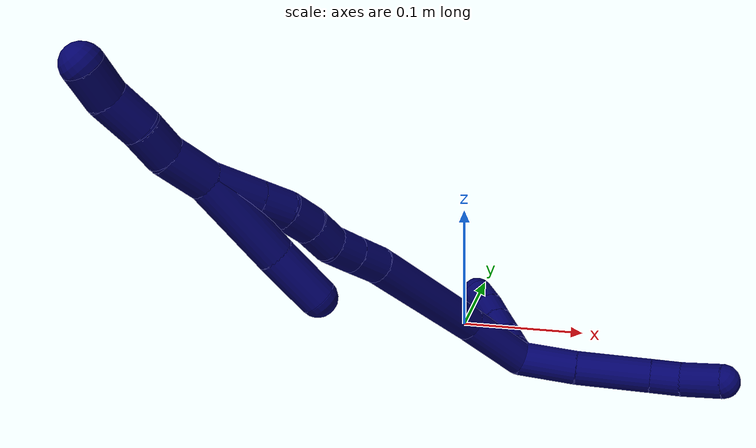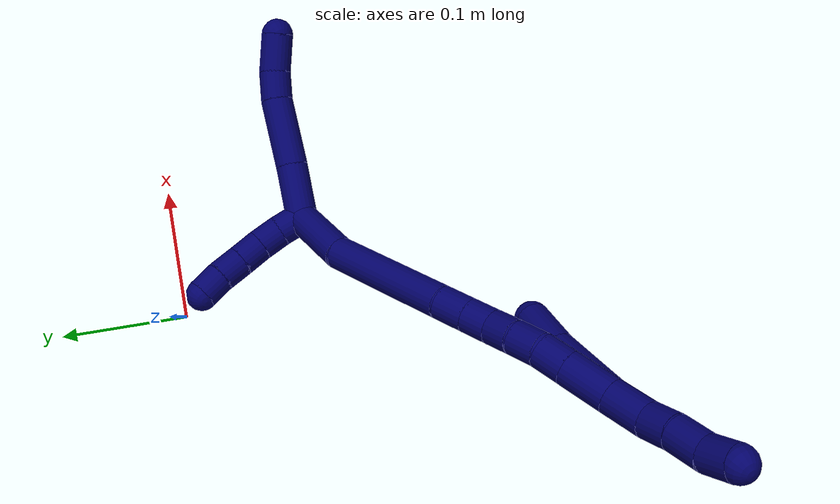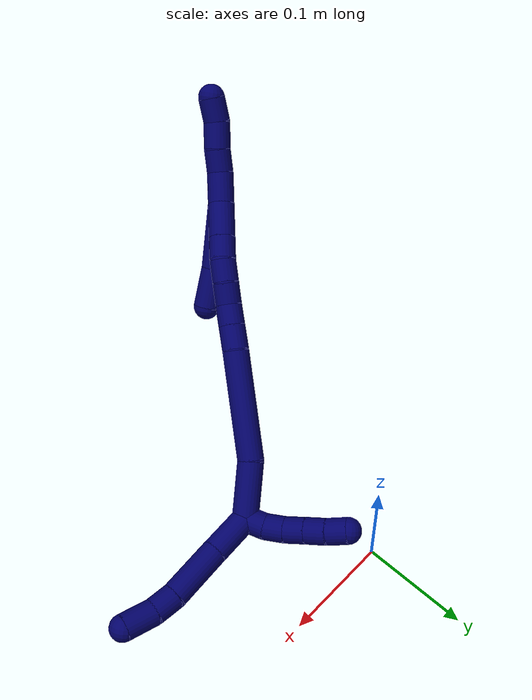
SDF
<sdf version="1.7">
 <world name="default">
  <model name="7">
   <static>0</static>
   <link name="7">
    <collision name="collision-cylinder-e_1_2_8">
     <pose>0.016295 -0.000649 -0.013409 3.09324 0.881687 3.03918</pose>
     <geometry><cylinder><radius>0.0125</radius><length>0.042226</length></cylinder></geometry>
     <surface>
      <friction><ode><mu>1.16</mu><mu2>1.16</mu2><slip1>0</slip1><slip2>0</slip2></ode></friction>
      <contact><ode><kp>1e+06</kp><kd>1</kd><max_vel>0</max_vel><min_depth>0.001</min_depth></ode></contact>
     </surface>
    </collision>
    <visual name="visual-cylinder-e_1_2_8">
     <pose>0.016295 -0.000649 -0.013409 3.09324 0.881687 3.03918</pose>
     <geometry><cylinder><radius>0.0125</radius><length>0.042226</length></cylinder></geometry>
     <material><ambient>0.003922 0 0.403922 1</ambient></material>
    </visual>
    <collision name="collision-cylinder-e_2_8_9">
     <pose>0.054309 -0.000818 -0.043427 -3.11272 0.917733 -3.08316</pose>
     <geometry><cylinder><radius>0.0125</radius><length>0.054689</length></cylinder></geometry>
     <surface>
      <friction><ode><mu>1.16</mu><mu2>1.16</mu2><slip1>0</slip1><slip2>0</slip2></ode></friction>
      <contact><ode><kp>1e+06</kp><kd>1</kd><max_vel>0</max_vel><min_depth>0.001</min_depth></ode></contact>
     </surface>
    </collision>
    <visual name="visual-cylinder-e_2_8_9">
     <pose>0.054309 -0.000818 -0.043427 -3.11272 0.917733 -3.08316</pose>
     <geometry><cylinder><radius>0.0125</radius><length>0.054689</length></cylinder></geometry>
     <material><ambient>0.003922 0 0.403922 1</ambient></material>
    </visual>
    <collision name="collision-cylinder-e_3_9_10">
     <pose>0.085811 -0.001507 -0.065843 2.94309 1.0264 2.79182</pose>
     <geometry><cylinder><radius>0.0125</radius><length>0.022877</length></cylinder></geometry>
     <surface>
      <friction><ode><mu>1.16</mu><mu2>1.16</mu2><slip1>0</slip1><slip2>0</slip2></ode></friction>
      <contact><ode><kp>1e+06</kp><kd>1</kd><max_vel>0</max_vel><min_depth>0.001</min_depth></ode></contact>
     </surface>
    </collision>
    <visual name="visual-cylinder-e_3_9_10">
     <pose>0.085811 -0.001507 -0.065843 2.94309 1.0264 2.79182</pose>
     <geometry><cylinder><radius>0.0125</radius><length>0.022877</length></cylinder></geometry>
     <material><ambient>0.003922 0 0.403922 1</ambient></material>
    </visual>
    <collision name="collision-cylinder-e_4_10_6">
     <pose>0.109479 -0.005491 -0.076891 2.64848 1.16594 2.41239</pose>
     <geometry><cylinder><radius>0.0125</radius><length>0.030207</length></cylinder></geometry>
     <surface>
      <friction><ode><mu>1.16</mu><mu2>1.16</mu2><slip1>0</slip1><slip2>0</slip2></ode></friction>
      <contact><ode><kp>1e+06</kp><kd>1</kd><max_vel>0</max_vel><min_depth>0.001</min_depth></ode></contact>
     </surface>
    </collision>
    <visual name="visual-cylinder-e_4_10_6">
     <pose>0.109479 -0.005491 -0.076891 2.64848 1.16594 2.41239</pose>
     <geometry><cylinder><radius>0.0125</radius><length>0.030207</length></cylinder></geometry>
     <material><ambient>0.003922 0 0.403922 1</ambient></material>
    </visual>
    <collision name="collision-cylinder-e_1_2_11">
     <pose>-0.005141 0.008418 -0.001646 -1.76387 -0.539944 0.648422</pose>
     <geometry><cylinder><radius>0.0125</radius><length>0.02</length></cylinder></geometry>
     <surface>
      <friction><ode><mu>1.16</mu><mu2>1.16</mu2><slip1>0</slip1><slip2>0</slip2></ode></friction>
      <contact><ode><kp>1e+06</kp><kd>1</kd><max_vel>0</max_vel><min_depth>0.001</min_depth></ode></contact>
     </surface>
    </collision>
    <visual name="visual-cylinder-e_1_2_11">
     <pose>-0.005141 0.008418 -0.001646 -1.76387 -0.539944 0.648422</pose>
     <geometry><cylinder><radius>0.0125</radius><length>0.02</length></cylinder></geometry>
     <material><ambient>0.003922 0 0.403922 1</ambient></material>
    </visual>
    <collision name="collision-cylinder-e_2_11_12">
     <pose>-0.01477 0.025716 -0.002289 -1.45834 -0.465495 0.417394</pose>
     <geometry><cylinder><radius>0.0125</radius><length>0.02</length></cylinder></geometry>
     <surface>
      <friction><ode><mu>1.16</mu><mu2>1.16</mu2><slip1>0</slip1><slip2>0</slip2></ode></friction>
      <contact><ode><kp>1e+06</kp><kd>1</kd><max_vel>0</max_vel><min_depth>0.001</min_depth></ode></contact>
     </surface>
    </collision>
    <visual name="visual-cylinder-e_2_11_12">
     <pose>-0.01477 0.025716 -0.002289 -1.45834 -0.465495 0.417394</pose>
     <geometry><cylinder><radius>0.0125</radius><length>0.02</length></cylinder></geometry>
     <material><ambient>0.003922 0 0.403922 1</ambient></material>
    </visual>
    <collision name="collision-cylinder-e_3_12_13">
     <pose>-0.02355 0.043348 0.000944 -1.32132 -0.443469 0.346889</pose>
     <geometry><cylinder><radius>0.0125</radius><length>0.02</length></cylinder></geometry>
     <surface>
      <friction><ode><mu>1.16</mu><mu2>1.16</mu2><slip1>0</slip1><slip2>0</slip2></ode></friction>
      <contact><ode><kp>1e+06</kp><kd>1</kd><max_vel>0</max_vel><min_depth>0.001</min_depth></ode></contact>
     </surface>
    </collision>
    <visual name="visual-cylinder-e_3_12_13">
     <pose>-0.02355 0.043348 0.000944 -1.32132 -0.443469 0.346889</pose>
     <geometry><cylinder><radius>0.0125</radius><length>0.02</length></cylinder></geometry>
     <material><ambient>0.003922 0 0.403922 1</ambient></material>
    </visual>
    <collision name="collision-cylinder-e_4_13_14">
     <pose>-0.032009 0.060929 0.00534 -1.33025 -0.42994 0.339226</pose>
     <geometry><cylinder><radius>0.0125</radius><length>0.02</length></cylinder></geometry>
     <surface>
      <friction><ode><mu>1.16</mu><mu2>1.16</mu2><slip1>0</slip1><slip2>0</slip2></ode></friction>
      <contact><ode><kp>1e+06</kp><kd>1</kd><max_vel>0</max_vel><min_depth>0.001</min_depth></ode></contact>
     </surface>
    </collision>
    <visual name="visual-cylinder-e_4_13_14">
     <pose>-0.032009 0.060929 0.00534 -1.33025 -0.42994 0.339226</pose>
     <geometry><cylinder><radius>0.0125</radius><length>0.02</length></cylinder></geometry>
     <material><ambient>0.003922 0 0.403922 1</ambient></material>
    </visual>
    <collision name="collision-cylinder-e_5_14_5">
     <pose>-0.041002 0.078045 0.010341 -1.24115 -0.503485 0.363619</pose>
     <geometry><cylinder><radius>0.0125</radius><length>0.02</length></cylinder></geometry>
     <surface>
      <friction><ode><mu>1.16</mu><mu2>1.16</mu2><slip1>0</slip1><slip2>0</slip2></ode></friction>
      <contact><ode><kp>1e+06</kp><kd>1</kd><max_vel>0</max_vel><min_depth>0.001</min_depth></ode></contact>
     </surface>
    </collision>
    <visual name="visual-cylinder-e_5_14_5">
     <pose>-0.041002 0.078045 0.010341 -1.24115 -0.503485 0.363619</pose>
     <geometry><cylinder><radius>0.0125</radius><length>0.02</length></cylinder></geometry>
     <material><ambient>0.003922 0 0.403922 1</ambient></material>
    </visual>
    <collision name="collision-cylinder-e_1_2_15">
     <pose>-0.003078 -0.004957 0.026728 0.183396 -0.11274 -0.010378</pose>
     <geometry><cylinder><radius>0.0125</radius><length>0.054714</length></cylinder></geometry>
     <surface>
      <friction><ode><mu>1.16</mu><mu2>1.16</mu2><slip1>0</slip1><slip2>0</slip2></ode></friction>
      <contact><ode><kp>1e+06</kp><kd>1</kd><max_vel>0</max_vel><min_depth>0.001</min_depth></ode></contact>
     </surface>
    </collision>
    <visual name="visual-cylinder-e_1_2_15">
     <pose>-0.003078 -0.004957 0.026728 0.183396 -0.11274 -0.010378</pose>
     <geometry><cylinder><radius>0.0125</radius><length>0.054714</length></cylinder></geometry>
     <material><ambient>0.003922 0 0.403922 1</ambient></material>
    </visual>
    <collision name="collision-cylinder-e_2_15_16">
     <pose>-0.004697 -0.028474 0.101692 0.367287 0.028201 0.005238</pose>
     <geometry><cylinder><radius>0.0125</radius><length>0.103409</length></cylinder></geometry>
     <surface>
      <friction><ode><mu>1.16</mu><mu2>1.16</mu2><slip1>0</slip1><slip2>0</slip2></ode></friction>
      <contact><ode><kp>1e+06</kp><kd>1</kd><max_vel>0</max_vel><min_depth>0.001</min_depth></ode></contact>
     </surface>
    </collision>
    <visual name="visual-cylinder-e_2_15_16">
     <pose>-0.004697 -0.028474 0.101692 0.367287 0.028201 0.005238</pose>
     <geometry><cylinder><radius>0.0125</radius><length>0.103409</length></cylinder></geometry>
     <material><ambient>0.003922 0 0.403922 1</ambient></material>
    </visual>
    <collision name="collision-cylinder-e_3_16_17">
     <pose>-0.003747 -0.052338 0.160362 0.470449 -0.043358 -0.010393</pose>
     <geometry><cylinder><radius>0.0125</radius><length>0.023432</length></cylinder></geometry>
     <surface>
      <friction><ode><mu>1.16</mu><mu2>1.16</mu2><slip1>0</slip1><slip2>0</slip2></ode></friction>
      <contact><ode><kp>1e+06</kp><kd>1</kd><max_vel>0</max_vel><min_depth>0.001</min_depth></ode></contact>
     </surface>
    </collision>
    <visual name="visual-cylinder-e_3_16_17">
     <pose>-0.003747 -0.052338 0.160362 0.470449 -0.043358 -0.010393</pose>
     <geometry><cylinder><radius>0.0125</radius><length>0.023432</length></cylinder></geometry>
     <material><ambient>0.003922 0 0.403922 1</ambient></material>
    </visual>
    <collision name="collision-cylinder-e_4_17_18">
     <pose>-0.004623 -0.062225 0.180012 0.461294 -0.035716 -0.008388</pose>
     <geometry><cylinder><radius>0.0125</radius><length>0.020598</length></cylinder></geometry>
     <surface>
      <friction><ode><mu>1.16</mu><mu2>1.16</mu2><slip1>0</slip1><slip2>0</slip2></ode></friction>
      <contact><ode><kp>1e+06</kp><kd>1</kd><max_vel>0</max_vel><min_depth>0.001</min_depth></ode></contact>
     </surface>
    </collision>
    <visual name="visual-cylinder-e_4_17_18">
     <pose>-0.004623 -0.062225 0.180012 0.461294 -0.035716 -0.008388</pose>
     <geometry><cylinder><radius>0.0125</radius><length>0.020598</length></cylinder></geometry>
     <material><ambient>0.003922 0 0.403922 1</ambient></material>
    </visual>
    <collision name="collision-cylinder-e_5_18_19">
     <pose>-0.003678 -0.069522 0.199463 0.25936 0.123294 0.016099</pose>
     <geometry><cylinder><radius>0.0125</radius><length>0.021341</length></cylinder></geometry>
     <surface>
      <friction><ode><mu>1.16</mu><mu2>1.16</mu2><slip1>0</slip1><slip2>0</slip2></ode></friction>
      <contact><ode><kp>1e+06</kp><kd>1</kd><max_vel>0</max_vel><min_depth>0.001</min_depth></ode></contact>
     </surface>
    </collision>
    <visual name="visual-cylinder-e_5_18_19">
     <pose>-0.003678 -0.069522 0.199463 0.25936 0.123294 0.016099</pose>
     <geometry><cylinder><radius>0.0125</radius><length>0.021341</length></cylinder></geometry>
     <material><ambient>0.003922 0 0.403922 1</ambient></material>
    </visual>
    <collision name="collision-cylinder-e_6_19_20">
     <pose>-0.002164 -0.076091 0.219611 0.370721 0.018994 0.003562</pose>
     <geometry><cylinder><radius>0.0125</radius><length>0.021274</length></cylinder></geometry>
     <surface>
      <friction><ode><mu>1.16</mu><mu2>1.16</mu2><slip1>0</slip1><slip2>0</slip2></ode></friction>
      <contact><ode><kp>1e+06</kp><kd>1</kd><max_vel>0</max_vel><min_depth>0.001</min_depth></ode></contact>
     </surface>
    </collision>
    <visual name="visual-cylinder-e_6_19_20">
     <pose>-0.002164 -0.076091 0.219611 0.370721 0.018994 0.003562</pose>
     <geometry><cylinder><radius>0.0125</radius><length>0.021274</length></cylinder></geometry>
     <material><ambient>0.003922 0 0.403922 1</ambient></material>
    </visual>
    <collision name="collision-cylinder-e_7_20_21">
     <pose>-0.003842 -0.084354 0.239095 0.431784 -0.176526 -0.03881</pose>
     <geometry><cylinder><radius>0.0125</radius><length>0.021409</length></cylinder></geometry>
     <surface>
      <friction><ode><mu>1.16</mu><mu2>1.16</mu2><slip1>0</slip1><slip2>0</slip2></ode></friction>
      <contact><ode><kp>1e+06</kp><kd>1</kd><max_vel>0</max_vel><min_depth>0.001</min_depth></ode></contact>
     </surface>
    </collision>
    <visual name="visual-cylinder-e_7_20_21">
     <pose>-0.003842 -0.084354 0.239095 0.431784 -0.176526 -0.03881</pose>
     <geometry><cylinder><radius>0.0125</radius><length>0.021409</length></cylinder></geometry>
     <material><ambient>0.003922 0 0.403922 1</ambient></material>
    </visual>
    <collision name="collision-cylinder-e_8_21_1">
     <pose>-0.008674 -0.095731 0.263791 0.431657 -0.175495 -0.03857</pose>
     <geometry><cylinder><radius>0.0125</radius><length>0.033824</length></cylinder></geometry>
     <surface>
      <friction><ode><mu>1.16</mu><mu2>1.16</mu2><slip1>0</slip1><slip2>0</slip2></ode></friction>
      <contact><ode><kp>1e+06</kp><kd>1</kd><max_vel>0</max_vel><min_depth>0.001</min_depth></ode></contact>
     </surface>
    </collision>
    <visual name="visual-cylinder-e_8_21_1">
     <pose>-0.008674 -0.095731 0.263791 0.431657 -0.175495 -0.03857</pose>
     <geometry><cylinder><radius>0.0125</radius><length>0.033824</length></cylinder></geometry>
     <material><ambient>0.003922 0 0.403922 1</ambient></material>
    </visual>
    <collision name="collision-cylinder-e_1_1_22">
     <pose>-0.012649 -0.102458 0.248179 -3.13378 -0.033228 2.67995</pose>
     <geometry><cylinder><radius>0.0125</radius><length>0.061508</length></cylinder></geometry>
     <surface>
      <friction><ode><mu>1.16</mu><mu2>1.16</mu2><slip1>0</slip1><slip2>0</slip2></ode></friction>
      <contact><ode><kp>1e+06</kp><kd>1</kd><max_vel>0</max_vel><min_depth>0.001</min_depth></ode></contact>
     </surface>
    </collision>
    <visual name="visual-cylinder-e_1_1_22">
     <pose>-0.012649 -0.102458 0.248179 -3.13378 -0.033228 2.67995</pose>
     <geometry><cylinder><radius>0.0125</radius><length>0.061508</length></cylinder></geometry>
     <material><ambient>0.003922 0 0.403922 1</ambient></material>
    </visual>
    <collision name="collision-cylinder-e_2_22_4">
     <pose>-0.012679 -0.103185 0.198247 3.09125 0.051556 1.59465</pose>
     <geometry><cylinder><radius>0.0125</radius><length>0.038492</length></cylinder></geometry>
     <surface>
      <friction><ode><mu>1.16</mu><mu2>1.16</mu2><slip1>0</slip1><slip2>0</slip2></ode></friction>
      <contact><ode><kp>1e+06</kp><kd>1</kd><max_vel>0</max_vel><min_depth>0.001</min_depth></ode></contact>
     </surface>
    </collision>
    <visual name="visual-cylinder-e_2_22_4">
     <pose>-0.012679 -0.103185 0.198247 3.09125 0.051556 1.59465</pose>
     <geometry><cylinder><radius>0.0125</radius><length>0.038492</length></cylinder></geometry>
     <material><ambient>0.003922 0 0.403922 1</ambient></material>
    </visual>
    <collision name="collision-cylinder-e_1_1_23">
     <pose>-0.012129 -0.106847 0.293306 0.280727 -0.033522 -0.004737</pose>
     <geometry><cylinder><radius>0.0125</radius><length>0.029971</length></cylinder></geometry>
     <surface>
      <friction><ode><mu>1.16</mu><mu2>1.16</mu2><slip1>0</slip1><slip2>0</slip2></ode></friction>
      <contact><ode><kp>1e+06</kp><kd>1</kd><max_vel>0</max_vel><min_depth>0.001</min_depth></ode></contact>
     </surface>
    </collision>
    <visual name="visual-cylinder-e_1_1_23">
     <pose>-0.012129 -0.106847 0.293306 0.280727 -0.033522 -0.004737</pose>
     <geometry><cylinder><radius>0.0125</radius><length>0.029971</length></cylinder></geometry>
     <material><ambient>0.003922 0 0.403922 1</ambient></material>
    </visual>
    <collision name="collision-cylinder-e_2_23_24">
     <pose>-0.010545 -0.112879 0.318294 0.175777 0.191492 0.016925</pose>
     <geometry><cylinder><radius>0.0125</radius><length>0.021928</length></cylinder></geometry>
     <surface>
      <friction><ode><mu>1.16</mu><mu2>1.16</mu2><slip1>0</slip1><slip2>0</slip2></ode></friction>
      <contact><ode><kp>1e+06</kp><kd>1</kd><max_vel>0</max_vel><min_depth>0.001</min_depth></ode></contact>
     </surface>
    </collision>
    <visual name="visual-cylinder-e_2_23_24">
     <pose>-0.010545 -0.112879 0.318294 0.175777 0.191492 0.016925</pose>
     <geometry><cylinder><radius>0.0125</radius><length>0.021928</length></cylinder></geometry>
     <material><ambient>0.003922 0 0.403922 1</ambient></material>
    </visual>
    <collision name="collision-cylinder-e_3_24_25">
     <pose>-0.007865 -0.116864 0.341316 0.167711 0.047025 0.003953</pose>
     <geometry><cylinder><radius>0.0125</radius><length>0.025229</length></cylinder></geometry>
     <surface>
      <friction><ode><mu>1.16</mu><mu2>1.16</mu2><slip1>0</slip1><slip2>0</slip2></ode></friction>
      <contact><ode><kp>1e+06</kp><kd>1</kd><max_vel>0</max_vel><min_depth>0.001</min_depth></ode></contact>
     </surface>
    </collision>
    <visual name="visual-cylinder-e_3_24_25">
     <pose>-0.007865 -0.116864 0.341316 0.167711 0.047025 0.003953</pose>
     <geometry><cylinder><radius>0.0125</radius><length>0.025229</length></cylinder></geometry>
     <material><ambient>0.003922 0 0.403922 1</ambient></material>
    </visual>
    <collision name="collision-cylinder-e_4_25_3">
     <pose>-0.003695 -0.12083 0.364441 0.172324 0.318145 0.027712</pose>
     <geometry><cylinder><radius>0.0125</radius><length>0.022872</length></cylinder></geometry>
     <surface>
      <friction><ode><mu>1.16</mu><mu2>1.16</mu2><slip1>0</slip1><slip2>0</slip2></ode></friction>
      <contact><ode><kp>1e+06</kp><kd>1</kd><max_vel>0</max_vel><min_depth>0.001</min_depth></ode></contact>
     </surface>
    </collision>
    <visual name="visual-cylinder-e_4_25_3">
     <pose>-0.003695 -0.12083 0.364441 0.172324 0.318145 0.027712</pose>
     <geometry><cylinder><radius>0.0125</radius><length>0.022872</length></cylinder></geometry>
     <material><ambient>0.003922 0 0.403922 1</ambient></material>
    </visual>
    <collision name="collision-sphere-3">
     <pose>-0.000118 -0.122693 0.375142 0 -0 0</pose>
     <geometry><sphere><radius>0.0125</radius></sphere></geometry>
     <surface>
      <friction><ode><mu>1.16</mu><mu2>1.16</mu2><slip1>0</slip1><slip2>0</slip2></ode></friction>
      <contact><ode><kp>1e+06</kp><kd>1</kd><max_vel>0</max_vel><min_depth>0.001</min_depth></ode></contact>
     </surface>
    </collision>
    <visual name="visual-sphere-3">
     <pose>-0.000118 -0.122693 0.375142 0 -0 0</pose>
     <geometry><sphere><radius>0.0125</radius></sphere></geometry>
     <material><ambient>0.003922 0 0.403922 1</ambient></material>
    </visual>
    <collision name="collision-sphere-25">
     <pose>-0.007272 -0.118968 0.353739 0 -0 0</pose>
     <geometry><sphere><radius>0.0125</radius></sphere></geometry>
     <surface>
      <friction><ode><mu>1.16</mu><mu2>1.16</mu2><slip1>0</slip1><slip2>0</slip2></ode></friction>
      <contact><ode><kp>1e+06</kp><kd>1</kd><max_vel>0</max_vel><min_depth>0.001</min_depth></ode></contact>
     </surface>
    </collision>
    <visual name="visual-sphere-25">
     <pose>-0.007272 -0.118968 0.353739 0 -0 0</pose>
     <geometry><sphere><radius>0.0125</radius></sphere></geometry>
     <material><ambient>0.003922 0 0.403922 1</ambient></material>
    </visual>
    <collision name="collision-sphere-24">
     <pose>-0.008458 -0.114761 0.328892 0 -0 0</pose>
     <geometry><sphere><radius>0.0125</radius></sphere></geometry>
     <surface>
      <friction><ode><mu>1.16</mu><mu2>1.16</mu2><slip1>0</slip1><slip2>0</slip2></ode></friction>
      <contact><ode><kp>1e+06</kp><kd>1</kd><max_vel>0</max_vel><min_depth>0.001</min_depth></ode></contact>
     </surface>
    </collision>
    <visual name="visual-sphere-24">
     <pose>-0.008458 -0.114761 0.328892 0 -0 0</pose>
     <geometry><sphere><radius>0.0125</radius></sphere></geometry>
     <material><ambient>0.003922 0 0.403922 1</ambient></material>
    </visual>
    <collision name="collision-sphere-23">
     <pose>-0.012632 -0.110997 0.307696 0 -0 0</pose>
     <geometry><sphere><radius>0.0125</radius></sphere></geometry>
     <surface>
      <friction><ode><mu>1.16</mu><mu2>1.16</mu2><slip1>0</slip1><slip2>0</slip2></ode></friction>
      <contact><ode><kp>1e+06</kp><kd>1</kd><max_vel>0</max_vel><min_depth>0.001</min_depth></ode></contact>
     </surface>
    </collision>
    <visual name="visual-sphere-23">
     <pose>-0.012632 -0.110997 0.307696 0 -0 0</pose>
     <geometry><sphere><radius>0.0125</radius></sphere></geometry>
     <material><ambient>0.003922 0 0.403922 1</ambient></material>
    </visual>
    <collision name="collision-sphere-4">
     <pose>-0.011687 -0.104152 0.179051 0 -0 0</pose>
     <geometry><sphere><radius>0.0125</radius></sphere></geometry>
     <surface>
      <friction><ode><mu>1.16</mu><mu2>1.16</mu2><slip1>0</slip1><slip2>0</slip2></ode></friction>
      <contact><ode><kp>1e+06</kp><kd>1</kd><max_vel>0</max_vel><min_depth>0.001</min_depth></ode></contact>
     </surface>
    </collision>
    <visual name="visual-sphere-4">
     <pose>-0.011687 -0.104152 0.179051 0 -0 0</pose>
     <geometry><sphere><radius>0.0125</radius></sphere></geometry>
     <material><ambient>0.003922 0 0.403922 1</ambient></material>
    </visual>
    <collision name="collision-sphere-22">
     <pose>-0.013671 -0.102218 0.217444 0 -0 0</pose>
     <geometry><sphere><radius>0.0125</radius></sphere></geometry>
     <surface>
      <friction><ode><mu>1.16</mu><mu2>1.16</mu2><slip1>0</slip1><slip2>0</slip2></ode></friction>
      <contact><ode><kp>1e+06</kp><kd>1</kd><max_vel>0</max_vel><min_depth>0.001</min_depth></ode></contact>
     </surface>
    </collision>
    <visual name="visual-sphere-22">
     <pose>-0.013671 -0.102218 0.217444 0 -0 0</pose>
     <geometry><sphere><radius>0.0125</radius></sphere></geometry>
     <material><ambient>0.003922 0 0.403922 1</ambient></material>
    </visual>
    <collision name="collision-sphere-1">
     <pose>-0.011627 -0.102698 0.278915 0 -0 0</pose>
     <geometry><sphere><radius>0.0125</radius></sphere></geometry>
     <surface>
      <friction><ode><mu>1.16</mu><mu2>1.16</mu2><slip1>0</slip1><slip2>0</slip2></ode></friction>
      <contact><ode><kp>1e+06</kp><kd>1</kd><max_vel>0</max_vel><min_depth>0.001</min_depth></ode></contact>
     </surface>
    </collision>
    <visual name="visual-sphere-1">
     <pose>-0.011627 -0.102698 0.278915 0 -0 0</pose>
     <geometry><sphere><radius>0.0125</radius></sphere></geometry>
     <material><ambient>0.003922 0 0.403922 1</ambient></material>
    </visual>
    <collision name="collision-sphere-21">
     <pose>-0.005722 -0.088764 0.248666 0 -0 0</pose>
     <geometry><sphere><radius>0.0125</radius></sphere></geometry>
     <surface>
      <friction><ode><mu>1.16</mu><mu2>1.16</mu2><slip1>0</slip1><slip2>0</slip2></ode></friction>
      <contact><ode><kp>1e+06</kp><kd>1</kd><max_vel>0</max_vel><min_depth>0.001</min_depth></ode></contact>
     </surface>
    </collision>
    <visual name="visual-sphere-21">
     <pose>-0.005722 -0.088764 0.248666 0 -0 0</pose>
     <geometry><sphere><radius>0.0125</radius></sphere></geometry>
     <material><ambient>0.003922 0 0.403922 1</ambient></material>
    </visual>
    <collision name="collision-sphere-11">
     <pose>-0.010282 0.016836 -0.003292 0 -0 0</pose>
     <geometry><sphere><radius>0.0125</radius></sphere></geometry>
     <surface>
      <friction><ode><mu>1.16</mu><mu2>1.16</mu2><slip1>0</slip1><slip2>0</slip2></ode></friction>
      <contact><ode><kp>1e+06</kp><kd>1</kd><max_vel>0</max_vel><min_depth>0.001</min_depth></ode></contact>
     </surface>
    </collision>
    <visual name="visual-sphere-11">
     <pose>-0.010282 0.016836 -0.003292 0 -0 0</pose>
     <geometry><sphere><radius>0.0125</radius></sphere></geometry>
     <material><ambient>0.003922 0 0.403922 1</ambient></material>
    </visual>
    <collision name="collision-sphere-6">
     <pose>0.123362 -0.008307 -0.082131 0 -0 0</pose>
     <geometry><sphere><radius>0.0125</radius></sphere></geometry>
     <surface>
      <friction><ode><mu>1.16</mu><mu2>1.16</mu2><slip1>0</slip1><slip2>0</slip2></ode></friction>
      <contact><ode><kp>1e+06</kp><kd>1</kd><max_vel>0</max_vel><min_depth>0.001</min_depth></ode></contact>
     </surface>
    </collision>
    <visual name="visual-sphere-6">
     <pose>0.123362 -0.008307 -0.082131 0 -0 0</pose>
     <geometry><sphere><radius>0.0125</radius></sphere></geometry>
     <material><ambient>0.003922 0 0.403922 1</ambient></material>
    </visual>
    <collision name="collision-sphere-10">
     <pose>0.095596 -0.002675 -0.07165 0 -0 0</pose>
     <geometry><sphere><radius>0.0125</radius></sphere></geometry>
     <surface>
      <friction><ode><mu>1.16</mu><mu2>1.16</mu2><slip1>0</slip1><slip2>0</slip2></ode></friction>
      <contact><ode><kp>1e+06</kp><kd>1</kd><max_vel>0</max_vel><min_depth>0.001</min_depth></ode></contact>
     </surface>
    </collision>
    <visual name="visual-sphere-10">
     <pose>0.095596 -0.002675 -0.07165 0 -0 0</pose>
     <geometry><sphere><radius>0.0125</radius></sphere></geometry>
     <material><ambient>0.003922 0 0.403922 1</ambient></material>
    </visual>
    <collision name="collision-sphere-9">
     <pose>0.076027 -0.000338 -0.060035 0 -0 0</pose>
     <geometry><sphere><radius>0.0125</radius></sphere></geometry>
     <surface>
      <friction><ode><mu>1.16</mu><mu2>1.16</mu2><slip1>0</slip1><slip2>0</slip2></ode></friction>
      <contact><ode><kp>1e+06</kp><kd>1</kd><max_vel>0</max_vel><min_depth>0.001</min_depth></ode></contact>
     </surface>
    </collision>
    <visual name="visual-sphere-9">
     <pose>0.076027 -0.000338 -0.060035 0 -0 0</pose>
     <geometry><sphere><radius>0.0125</radius></sphere></geometry>
     <material><ambient>0.003922 0 0.403922 1</ambient></material>
    </visual>
    <collision name="collision-sphere-2">
     <geometry><sphere><radius>0.0125</radius></sphere></geometry>
     <surface>
      <friction><ode><mu>1.16</mu><mu2>1.16</mu2><slip1>0</slip1><slip2>0</slip2></ode></friction>
      <contact><ode><kp>1e+06</kp><kd>1</kd><max_vel>0</max_vel><min_depth>0.001</min_depth></ode></contact>
     </surface>
    </collision>
    <visual name="visual-sphere-2">
     <geometry><sphere><radius>0.0125</radius></sphere></geometry>
     <material><ambient>0.003922 0 0.403922 1</ambient></material>
    </visual>
    <collision name="collision-sphere-19">
     <pose>-0.002366 -0.072238 0.209699 0 -0 0</pose>
     <geometry><sphere><radius>0.0125</radius></sphere></geometry>
     <surface>
      <friction><ode><mu>1.16</mu><mu2>1.16</mu2><slip1>0</slip1><slip2>0</slip2></ode></friction>
      <contact><ode><kp>1e+06</kp><kd>1</kd><max_vel>0</max_vel><min_depth>0.001</min_depth></ode></contact>
     </surface>
    </collision>
    <visual name="visual-sphere-19">
     <pose>-0.002366 -0.072238 0.209699 0 -0 0</pose>
     <geometry><sphere><radius>0.0125</radius></sphere></geometry>
     <material><ambient>0.003922 0 0.403922 1</ambient></material>
    </visual>
    <collision name="collision-sphere-8">
     <pose>0.032591 -0.001298 -0.026818 0 -0 0</pose>
     <geometry><sphere><radius>0.0125</radius></sphere></geometry>
     <surface>
      <friction><ode><mu>1.16</mu><mu2>1.16</mu2><slip1>0</slip1><slip2>0</slip2></ode></friction>
      <contact><ode><kp>1e+06</kp><kd>1</kd><max_vel>0</max_vel><min_depth>0.001</min_depth></ode></contact>
     </surface>
    </collision>
    <visual name="visual-sphere-8">
     <pose>0.032591 -0.001298 -0.026818 0 -0 0</pose>
     <geometry><sphere><radius>0.0125</radius></sphere></geometry>
     <material><ambient>0.003922 0 0.403922 1</ambient></material>
    </visual>
    <collision name="collision-sphere-12">
     <pose>-0.019259 0.034595 -0.001286 0 -0 0</pose>
     <geometry><sphere><radius>0.0125</radius></sphere></geometry>
     <surface>
      <friction><ode><mu>1.16</mu><mu2>1.16</mu2><slip1>0</slip1><slip2>0</slip2></ode></friction>
      <contact><ode><kp>1e+06</kp><kd>1</kd><max_vel>0</max_vel><min_depth>0.001</min_depth></ode></contact>
     </surface>
    </collision>
    <visual name="visual-sphere-12">
     <pose>-0.019259 0.034595 -0.001286 0 -0 0</pose>
     <geometry><sphere><radius>0.0125</radius></sphere></geometry>
     <material><ambient>0.003922 0 0.403922 1</ambient></material>
    </visual>
    <collision name="collision-sphere-13">
     <pose>-0.027841 0.052101 0.003174 0 -0 0</pose>
     <geometry><sphere><radius>0.0125</radius></sphere></geometry>
     <surface>
      <friction><ode><mu>1.16</mu><mu2>1.16</mu2><slip1>0</slip1><slip2>0</slip2></ode></friction>
      <contact><ode><kp>1e+06</kp><kd>1</kd><max_vel>0</max_vel><min_depth>0.001</min_depth></ode></contact>
     </surface>
    </collision>
    <visual name="visual-sphere-13">
     <pose>-0.027841 0.052101 0.003174 0 -0 0</pose>
     <geometry><sphere><radius>0.0125</radius></sphere></geometry>
     <material><ambient>0.003922 0 0.403922 1</ambient></material>
    </visual>
    <collision name="collision-sphere-14">
     <pose>-0.036177 0.069758 0.007505 0 -0 0</pose>
     <geometry><sphere><radius>0.0125</radius></sphere></geometry>
     <surface>
      <friction><ode><mu>1.16</mu><mu2>1.16</mu2><slip1>0</slip1><slip2>0</slip2></ode></friction>
      <contact><ode><kp>1e+06</kp><kd>1</kd><max_vel>0</max_vel><min_depth>0.001</min_depth></ode></contact>
     </surface>
    </collision>
    <visual name="visual-sphere-14">
     <pose>-0.036177 0.069758 0.007505 0 -0 0</pose>
     <geometry><sphere><radius>0.0125</radius></sphere></geometry>
     <material><ambient>0.003922 0 0.403922 1</ambient></material>
    </visual>
    <collision name="collision-sphere-5">
     <pose>-0.045827 0.086332 0.013176 0 -0 0</pose>
     <geometry><sphere><radius>0.0125</radius></sphere></geometry>
     <surface>
      <friction><ode><mu>1.16</mu><mu2>1.16</mu2><slip1>0</slip1><slip2>0</slip2></ode></friction>
      <contact><ode><kp>1e+06</kp><kd>1</kd><max_vel>0</max_vel><min_depth>0.001</min_depth></ode></contact>
     </surface>
    </collision>
    <visual name="visual-sphere-5">
     <pose>-0.045827 0.086332 0.013176 0 -0 0</pose>
     <geometry><sphere><radius>0.0125</radius></sphere></geometry>
     <material><ambient>0.003922 0 0.403922 1</ambient></material>
    </visual>
    <collision name="collision-sphere-15">
     <pose>-0.006155 -0.009915 0.053455 0 -0 0</pose>
     <geometry><sphere><radius>0.0125</radius></sphere></geometry>
     <surface>
      <friction><ode><mu>1.16</mu><mu2>1.16</mu2><slip1>0</slip1><slip2>0</slip2></ode></friction>
      <contact><ode><kp>1e+06</kp><kd>1</kd><max_vel>0</max_vel><min_depth>0.001</min_depth></ode></contact>
     </surface>
    </collision>
    <visual name="visual-sphere-15">
     <pose>-0.006155 -0.009915 0.053455 0 -0 0</pose>
     <geometry><sphere><radius>0.0125</radius></sphere></geometry>
     <material><ambient>0.003922 0 0.403922 1</ambient></material>
    </visual>
    <collision name="collision-sphere-16">
     <pose>-0.00324 -0.047033 0.149929 0 -0 0</pose>
     <geometry><sphere><radius>0.0125</radius></sphere></geometry>
     <surface>
      <friction><ode><mu>1.16</mu><mu2>1.16</mu2><slip1>0</slip1><slip2>0</slip2></ode></friction>
      <contact><ode><kp>1e+06</kp><kd>1</kd><max_vel>0</max_vel><min_depth>0.001</min_depth></ode></contact>
     </surface>
    </collision>
    <visual name="visual-sphere-16">
     <pose>-0.00324 -0.047033 0.149929 0 -0 0</pose>
     <geometry><sphere><radius>0.0125</radius></sphere></geometry>
     <material><ambient>0.003922 0 0.403922 1</ambient></material>
    </visual>
    <collision name="collision-sphere-17">
     <pose>-0.004255 -0.057644 0.170795 0 -0 0</pose>
     <geometry><sphere><radius>0.0125</radius></sphere></geometry>
     <surface>
      <friction><ode><mu>1.16</mu><mu2>1.16</mu2><slip1>0</slip1><slip2>0</slip2></ode></friction>
      <contact><ode><kp>1e+06</kp><kd>1</kd><max_vel>0</max_vel><min_depth>0.001</min_depth></ode></contact>
     </surface>
    </collision>
    <visual name="visual-sphere-17">
     <pose>-0.004255 -0.057644 0.170795 0 -0 0</pose>
     <geometry><sphere><radius>0.0125</radius></sphere></geometry>
     <material><ambient>0.003922 0 0.403922 1</ambient></material>
    </visual>
    <collision name="collision-sphere-18">
     <pose>-0.004991 -0.066806 0.189228 0 -0 0</pose>
     <geometry><sphere><radius>0.0125</radius></sphere></geometry>
     <surface>
      <friction><ode><mu>1.16</mu><mu2>1.16</mu2><slip1>0</slip1><slip2>0</slip2></ode></friction>
      <contact><ode><kp>1e+06</kp><kd>1</kd><max_vel>0</max_vel><min_depth>0.001</min_depth></ode></contact>
     </surface>
    </collision>
    <visual name="visual-sphere-18">
     <pose>-0.004991 -0.066806 0.189228 0 -0 0</pose>
     <geometry><sphere><radius>0.0125</radius></sphere></geometry>
     <material><ambient>0.003922 0 0.403922 1</ambient></material>
    </visual>
    <collision name="collision-sphere-20">
     <pose>-0.001962 -0.079944 0.229524 0 -0 0</pose>
     <geometry><sphere><radius>0.0125</radius></sphere></geometry>
     <surface>
      <friction><ode><mu>1.16</mu><mu2>1.16</mu2><slip1>0</slip1><slip2>0</slip2></ode></friction>
      <contact><ode><kp>1e+06</kp><kd>1</kd><max_vel>0</max_vel><min_depth>0.001</min_depth></ode></contact>
     </surface>
    </collision>
    <visual name="visual-sphere-20">
     <pose>-0.001962 -0.079944 0.229524 0 -0 0</pose>
     <geometry><sphere><radius>0.0125</radius></sphere></geometry>
     <material><ambient>0.003922 0 0.403922 1</ambient></material>
    </visual>
    <inertial>
     <pose>0.004157 -0.041969 0.122013 0 -0 0</pose>
     <mass>0.75</mass>
     <inertia><ixx>0.00013</ixx><ixy>0</ixy><ixz>0</ixz><iyy>0.000194</iyy><iyz>0</iyz><izz>3.5e-05</izz></inertia>
    </inertial>
   </link>
   <pose>0.06255 -0.103024 0.019894 0.414316 -0.545695 -0.194649</pose>
  </model>
 </world>
</sdf>
